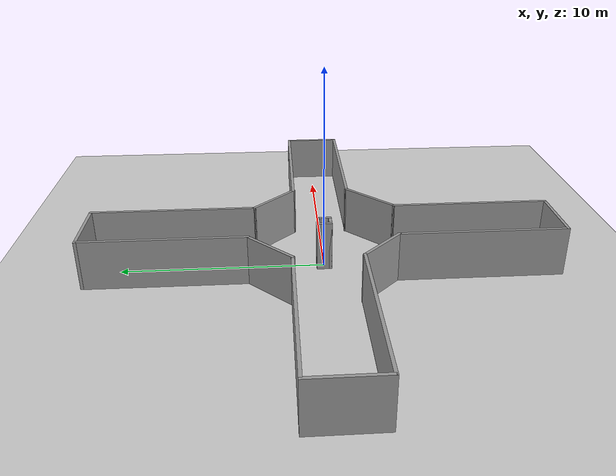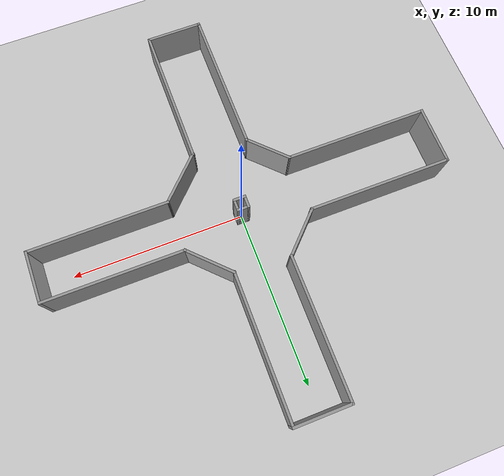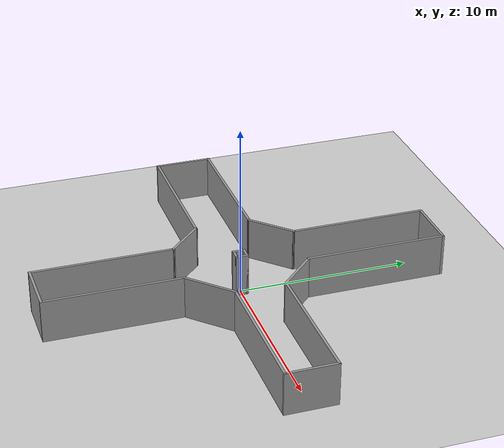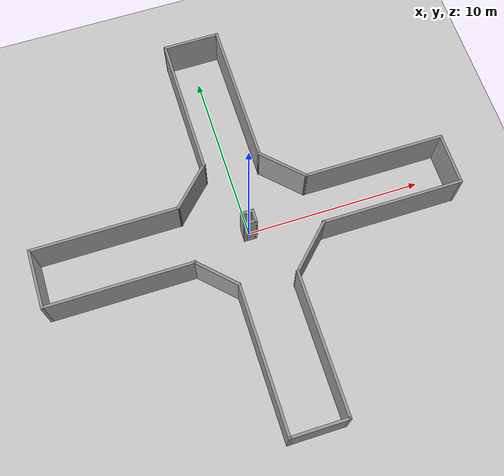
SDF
<sdf version="1.6">
 <world name="default">
  <light name="sun" type="directional">
   <pose>0 0 10 0 -0 0</pose>
   <diffuse>0.8 0.8 0.8 1</diffuse>
   <specular>0.2 0.2 0.2 1</specular>
   <attenuation>
    <range>1000</range>
    <constant>0.9</constant>
    <linear>0.01</linear>
    <quadratic>0.001</quadratic>
   </attenuation>
   <direction>-0.5 0.1 -0.9</direction>
  </light>
  <model name="ground_plane">
   <static>1</static>
   <link name="link">
    <collision name="collision">
     <geometry><plane><normal>0 0 1</normal><size>100 100</size></plane></geometry>
     <surface>
      <contact><collide_bitmask>65535</collide_bitmask></contact>
      <friction><ode><mu>100</mu><mu2>50</mu2></ode></friction>
     </surface>
    </collision>
    <visual name="visual">
     <cast_shadows>0</cast_shadows>
     <geometry><plane><normal>0 0 1</normal><size>100 100</size></plane></geometry>
     <material>
      <script><uri>file://media/materials/scripts/gazebo.material</uri><name>Gazebo/Grey</name></script>
     </material>
    </visual>
   </link>
  </model>
  <gravity>0 0 -9.8</gravity>
  <magnetic_field>6e-06 2.3e-05 -4.2e-05</magnetic_field>
  <atmosphere type="adiabatic"/>
  <physics name="default_physics" default="0" type="ode">
   <max_step_size>0.001</max_step_size>
   <real_time_factor>1</real_time_factor>
   <real_time_update_rate>1000</real_time_update_rate>
  </physics>
  <scene><ambient>0.4 0.4 0.4 1</ambient><background>0.7 0.7 0.7 1</background><shadows>1</shadows></scene>
  <audio><device>default</device></audio>
  <spherical_coordinates>
   <surface_model>EARTH_WGS84</surface_model>
   <latitude_deg>0</latitude_deg>
   <longitude_deg>0</longitude_deg>
   <elevation>0</elevation>
   <heading_deg>0</heading_deg>
  </spherical_coordinates>
  <model name="box">
   <link name="Wall_0">
    <collision name="Wall_0_Collision">
     <geometry><box><size>0.75 0.15 2.5</size></box></geometry>
     <pose>0 0 1.25 0 -0 0</pose>
    </collision>
    <visual name="Wall_0_Visual">
     <pose>0 0 1.25 0 -0 0</pose>
     <geometry><box><size>0.75 0.15 2.5</size></box></geometry>
     <material>
      <script><uri>file://media/materials/scripts/gazebo.material</uri><name>Gazebo/Grey</name></script>
      <ambient>1 1 1 1</ambient>
     </material>
     <meta><layer>0</layer></meta>
    </visual>
    <pose>-0 0.3 0 0 -0 0</pose>
   </link>
   <link name="Wall_1">
    <collision name="Wall_1_Collision">
     <geometry><box><size>0.75 0.15 2.5</size></box></geometry>
     <pose>0 0 1.25 0 -0 0</pose>
    </collision>
    <visual name="Wall_1_Visual">
     <pose>0 0 1.25 0 -0 0</pose>
     <geometry><box><size>0.75 0.15 2.5</size></box></geometry>
     <material>
      <script><uri>file://media/materials/scripts/gazebo.material</uri><name>Gazebo/Grey</name></script>
      <ambient>1 1 1 1</ambient>
     </material>
     <meta><layer>0</layer></meta>
    </visual>
    <pose>0.3 -0 0 0 -0 -1.5708</pose>
   </link>
   <link name="Wall_2">
    <collision name="Wall_2_Collision">
     <geometry><box><size>0.75 0.15 2.5</size></box></geometry>
     <pose>0 0 1.25 0 -0 0</pose>
    </collision>
    <visual name="Wall_2_Visual">
     <pose>0 0 1.25 0 -0 0</pose>
     <geometry><box><size>0.75 0.15 2.5</size></box></geometry>
     <material>
      <script><uri>file://media/materials/scripts/gazebo.material</uri><name>Gazebo/Grey</name></script>
      <ambient>1 1 1 1</ambient>
     </material>
     <meta><layer>0</layer></meta>
    </visual>
    <pose>-0 -0.3 0 0 -0 3.14159</pose>
   </link>
   <link name="Wall_3">
    <collision name="Wall_3_Collision">
     <geometry><box><size>0.75 0.15 2.5</size></box></geometry>
     <pose>0 0 1.25 0 -0 0</pose>
    </collision>
    <visual name="Wall_3_Visual">
     <pose>0 0 1.25 0 -0 0</pose>
     <geometry><box><size>0.75 0.15 2.5</size></box></geometry>
     <material>
      <script><uri>file://media/materials/scripts/gazebo.material</uri><name>Gazebo/Grey</name></script>
      <ambient>1 1 1 1</ambient>
     </material>
     <meta><layer>0</layer></meta>
    </visual>
    <pose>-0.3 -0 0 0 -0 1.5708</pose>
   </link>
   <static>1</static>
  </model>
  <model name="Walls">
   <link name="Wall_0">
    <collision name="Wall_0_Collision">
     <geometry><box><size>8.25 0.15 2.5</size></box></geometry>
     <pose>0 0 1.25 0 -0 0</pose>
    </collision>
    <visual name="Wall_0_Visual">
     <pose>0 0 1.25 0 -0 0</pose>
     <geometry><box><size>8.25 0.15 2.5</size></box></geometry>
     <material>
      <script><uri>file://media/materials/scripts/gazebo.material</uri><name>Gazebo/Grey</name></script>
      <ambient>1 1 1 1</ambient>
     </material>
     <meta><layer>0</layer></meta>
    </visual>
    <pose>-7.49025 -1.56516 0 0 -0 0</pose>
   </link>
   <link name="Wall_1">
    <collision name="Wall_1_Collision">
     <geometry><box><size>2.75 0.15 2.5</size></box></geometry>
     <pose>0 0 1.25 0 -0 0</pose>
    </collision>
    <visual name="Wall_1_Visual">
     <pose>0 0 1.25 0 -0 0</pose>
     <geometry><box><size>2.75 0.15 2.5</size></box></geometry>
     <material>
      <script><uri>file://media/materials/scripts/gazebo.material</uri><name>Gazebo/Grey</name></script>
      <ambient>1 1 1 1</ambient>
     </material>
     <meta><layer>0</layer></meta>
    </visual>
    <pose>-2.52102 -2.4844 0 0 -0 -0.785398</pose>
   </link>
   <link name="Wall_10">
    <collision name="Wall_10_Collision">
     <geometry><box><size>8.25 0.15 2.5</size></box></geometry>
     <pose>0 0 1.25 0 -0 0</pose>
    </collision>
    <visual name="Wall_10_Visual">
     <pose>0 0 1.25 0 -0 0</pose>
     <geometry><box><size>8.25 0.15 2.5</size></box></geometry>
     <material>
      <script><uri>file://media/materials/scripts/gazebo.material</uri><name>Gazebo/Grey</name></script>
      <ambient>1 1 1 1</ambient>
     </material>
     <meta><layer>0</layer></meta>
    </visual>
    <pose>1.675 7.45364 0 0 -0 1.5708</pose>
   </link>
   <link name="Wall_11">
    <collision name="Wall_11_Collision">
     <geometry><box><size>3.25 0.15 2.5</size></box></geometry>
     <pose>0 0 1.25 0 -0 0</pose>
    </collision>
    <visual name="Wall_11_Visual">
     <pose>0 0 1.25 0 -0 0</pose>
     <geometry><box><size>3.25 0.15 2.5</size></box></geometry>
     <material>
      <script><uri>file://media/materials/scripts/gazebo.material</uri><name>Gazebo/Grey</name></script>
      <ambient>1 1 1 1</ambient>
     </material>
     <meta><layer>0</layer></meta>
    </visual>
    <pose>0.125 11.5036 0 0 -0 3.14159</pose>
   </link>
   <link name="Wall_12">
    <collision name="Wall_12_Collision">
     <geometry><box><size>8 0.15 2.5</size></box></geometry>
     <pose>0 0 1.25 0 -0 0</pose>
    </collision>
    <visual name="Wall_12_Visual">
     <pose>0 0 1.25 0 -0 0</pose>
     <geometry><box><size>8 0.15 2.5</size></box></geometry>
     <material>
      <script><uri>file://media/materials/scripts/gazebo.material</uri><name>Gazebo/Grey</name></script>
      <ambient>1 1 1 1</ambient>
     </material>
     <meta><layer>0</layer></meta>
    </visual>
    <pose>-1.425 7.57864 0 0 -0 -1.5708</pose>
   </link>
   <link name="Wall_13">
    <collision name="Wall_13_Collision">
     <geometry><box><size>3 0.15 2.5</size></box></geometry>
     <pose>0 0 1.25 0 -0 0</pose>
    </collision>
    <visual name="Wall_13_Visual">
     <pose>0 0 1.25 0 -0 0</pose>
     <geometry><box><size>3 0.15 2.5</size></box></geometry>
     <material>
      <script><uri>file://media/materials/scripts/gazebo.material</uri><name>Gazebo/Grey</name></script>
      <ambient>1 1 1 1</ambient>
     </material>
     <meta><layer>0</layer></meta>
    </visual>
    <pose>-2.43263 2.64601 0 0 -0 -2.35619</pose>
   </link>
   <link name="Wall_14">
    <collision name="Wall_14_Collision">
     <geometry><box><size>8.25 0.15 2.5</size></box></geometry>
     <pose>0 0 1.25 0 -0 0</pose>
    </collision>
    <visual name="Wall_14_Visual">
     <pose>0 0 1.25 0 -0 0</pose>
     <geometry><box><size>8.25 0.15 2.5</size></box></geometry>
     <material>
      <script><uri>file://media/materials/scripts/gazebo.material</uri><name>Gazebo/Grey</name></script>
      <ambient>1 1 1 1</ambient>
     </material>
     <meta><layer>0</layer></meta>
    </visual>
    <pose>-7.49025 1.63839 0 0 -0 3.14159</pose>
   </link>
   <link name="Wall_15">
    <collision name="Wall_15_Collision">
     <geometry><box><size>3.35355 0.15 2.5</size></box></geometry>
     <pose>0 0 1.25 0 -0 0</pose>
    </collision>
    <visual name="Wall_15_Visual">
     <pose>0 0 1.25 0 -0 0</pose>
     <geometry><box><size>3.35355 0.15 2.5</size></box></geometry>
     <material>
      <script><uri>file://media/materials/scripts/gazebo.material</uri><name>Gazebo/Grey</name></script>
      <ambient>1 1 1 1</ambient>
     </material>
     <meta><layer>0</layer></meta>
    </visual>
    <pose>-11.5403 0.036611 0 0 -0 -1.5708</pose>
   </link>
   <link name="Wall_2">
    <collision name="Wall_2_Collision">
     <geometry><box><size>8.25 0.15 2.5</size></box></geometry>
     <pose>0 0 1.25 0 -0 0</pose>
    </collision>
    <visual name="Wall_2_Visual">
     <pose>0 0 1.25 0 -0 0</pose>
     <geometry><box><size>8.25 0.15 2.5</size></box></geometry>
     <material>
      <script><uri>file://media/materials/scripts/gazebo.material</uri><name>Gazebo/Grey</name></script>
      <ambient>1 1 1 1</ambient>
     </material>
     <meta><layer>0</layer></meta>
    </visual>
    <pose>-1.60178 -7.45364 0 0 -0 -1.5708</pose>
   </link>
   <link name="Wall_3">
    <collision name="Wall_3_Collision">
     <geometry><box><size>3.25 0.15 2.5</size></box></geometry>
     <pose>0 0 1.25 0 -0 0</pose>
    </collision>
    <visual name="Wall_3_Visual">
     <pose>0 0 1.25 0 -0 0</pose>
     <geometry><box><size>3.25 0.15 2.5</size></box></geometry>
     <material>
      <script><uri>file://media/materials/scripts/gazebo.material</uri><name>Gazebo/Grey</name></script>
      <ambient>1 1 1 1</ambient>
     </material>
     <meta><layer>0</layer></meta>
    </visual>
    <pose>-0.051777 -11.5036 0 0 -0 0</pose>
   </link>
   <link name="Wall_4">
    <collision name="Wall_4_Collision">
     <geometry><box><size>8 0.15 2.5</size></box></geometry>
     <pose>0 0 1.25 0 -0 0</pose>
    </collision>
    <visual name="Wall_4_Visual">
     <pose>0 0 1.25 0 -0 0</pose>
     <geometry><box><size>8 0.15 2.5</size></box></geometry>
     <material>
      <script><uri>file://media/materials/scripts/gazebo.material</uri><name>Gazebo/Grey</name></script>
      <ambient>1 1 1 1</ambient>
     </material>
     <meta><layer>0</layer></meta>
    </visual>
    <pose>1.49822 -7.57864 0 0 -0 1.5708</pose>
   </link>
   <link name="Wall_5">
    <collision name="Wall_5_Collision">
     <geometry><box><size>3.25 0.15 2.5</size></box></geometry>
     <pose>0 0 1.25 0 -0 0</pose>
    </collision>
    <visual name="Wall_5_Visual">
     <pose>0 0 1.25 0 -0 0</pose>
     <geometry><box><size>3.25 0.15 2.5</size></box></geometry>
     <material>
      <script><uri>file://media/materials/scripts/gazebo.material</uri><name>Gazebo/Grey</name></script>
      <ambient>1 1 1 1</ambient>
     </material>
     <meta><layer>0</layer></meta>
    </visual>
    <pose>2.59424 -2.55763 0 0 -0 0.785398</pose>
   </link>
   <link name="Wall_6">
    <collision name="Wall_6_Collision">
     <geometry><box><size>8 0.15 2.5</size></box></geometry>
     <pose>0 0 1.25 0 -0 0</pose>
    </collision>
    <visual name="Wall_6_Visual">
     <pose>0 0 1.25 0 -0 0</pose>
     <geometry><box><size>8 0.15 2.5</size></box></geometry>
     <material>
      <script><uri>file://media/materials/scripts/gazebo.material</uri><name>Gazebo/Grey</name></script>
      <ambient>1 1 1 1</ambient>
     </material>
     <meta><layer>0</layer></meta>
    </visual>
    <pose>7.61525 -1.46161 0 0 -0 0</pose>
   </link>
   <link name="Wall_7">
    <collision name="Wall_7_Collision">
     <geometry><box><size>3 0.15 2.5</size></box></geometry>
     <pose>0 0 1.25 0 -0 0</pose>
    </collision>
    <visual name="Wall_7_Visual">
     <pose>0 0 1.25 0 -0 0</pose>
     <geometry><box><size>3 0.15 2.5</size></box></geometry>
     <material>
      <script><uri>file://media/materials/scripts/gazebo.material</uri><name>Gazebo/Grey</name></script>
      <ambient>1 1 1 1</ambient>
     </material>
     <meta><layer>0</layer></meta>
    </visual>
    <pose>11.5403 -0.036612 0 0 -0 1.5708</pose>
   </link>
   <link name="Wall_8">
    <collision name="Wall_8_Collision">
     <geometry><box><size>8 0.15 2.5</size></box></geometry>
     <pose>0 0 1.25 0 -0 0</pose>
    </collision>
    <visual name="Wall_8_Visual">
     <pose>0 0 1.25 0 -0 0</pose>
     <geometry><box><size>8 0.15 2.5</size></box></geometry>
     <material>
      <script><uri>file://media/materials/scripts/gazebo.material</uri><name>Gazebo/Grey</name></script>
      <ambient>1 1 1 1</ambient>
     </material>
     <meta><layer>0</layer></meta>
    </visual>
    <pose>7.61525 1.38839 0 0 -0 3.14159</pose>
   </link>
   <link name="Wall_9">
    <collision name="Wall_9_Collision">
     <geometry><box><size>3 0.15 2.5</size></box></geometry>
     <pose>0 0 1.25 0 -0 0</pose>
    </collision>
    <visual name="Wall_9_Visual">
     <pose>0 0 1.25 0 -0 0</pose>
     <geometry><box><size>3 0.15 2.5</size></box></geometry>
     <material>
      <script><uri>file://media/materials/scripts/gazebo.material</uri><name>Gazebo/Grey</name></script>
      <ambient>1 1 1 1</ambient>
     </material>
     <meta><layer>0</layer></meta>
    </visual>
    <pose>2.68263 2.39601 0 0 -0 2.35619</pose>
   </link>
   <static>1</static>
  </model>
 </world>
</sdf>
